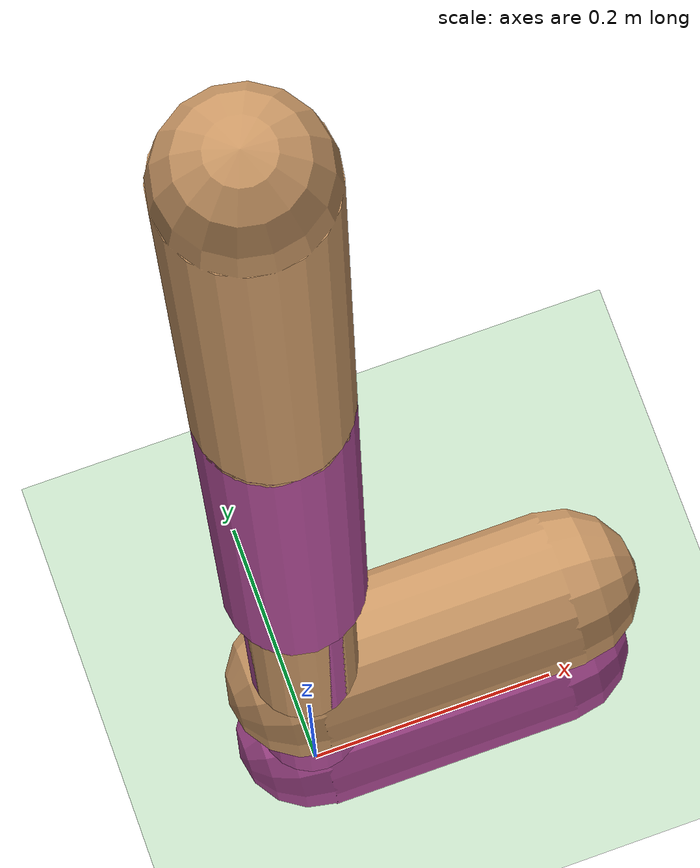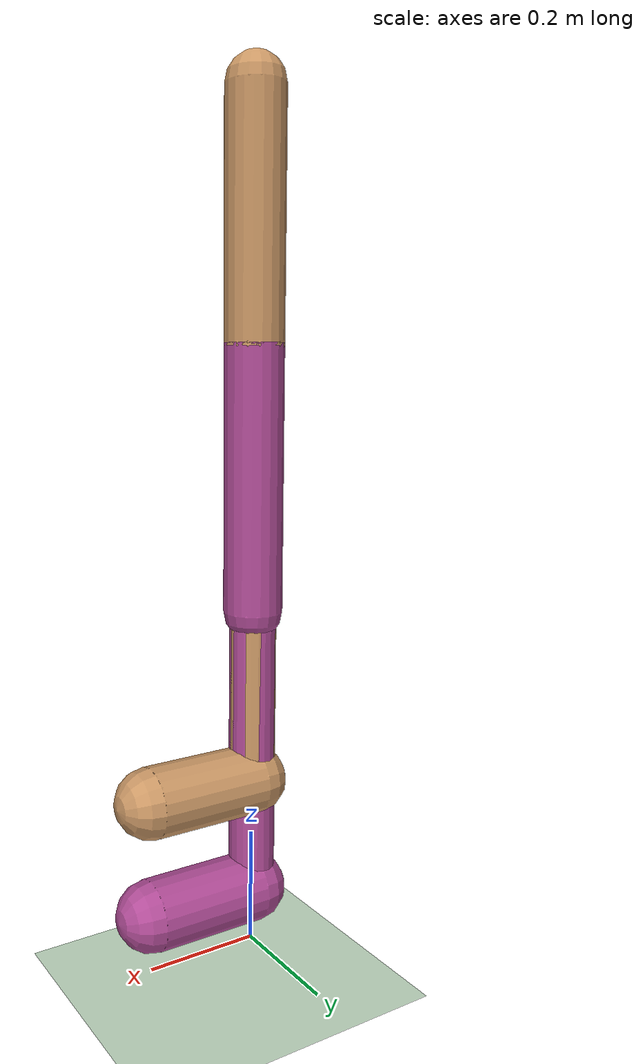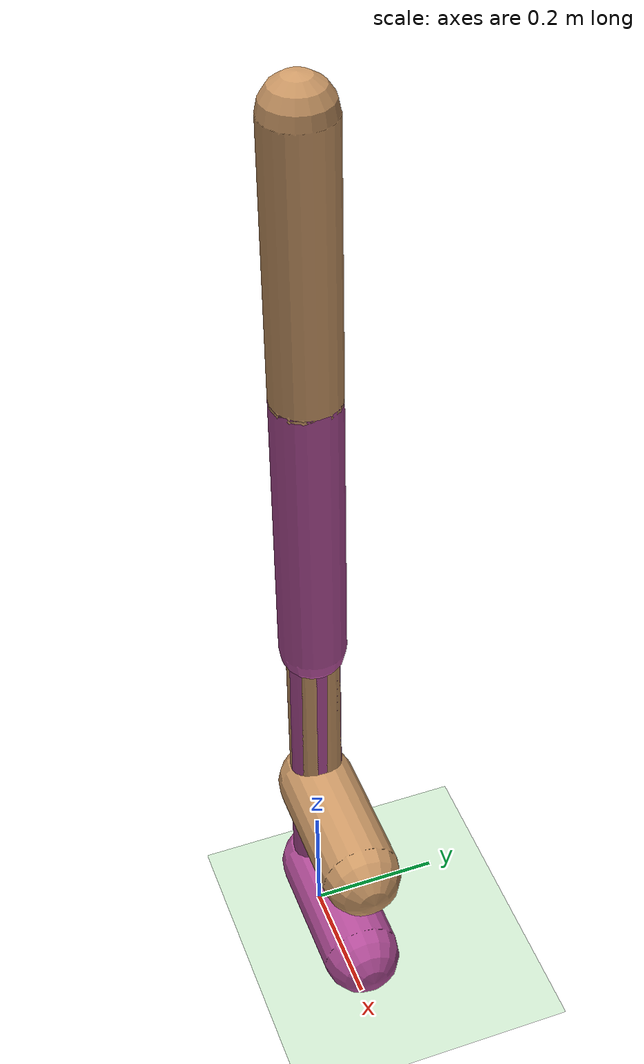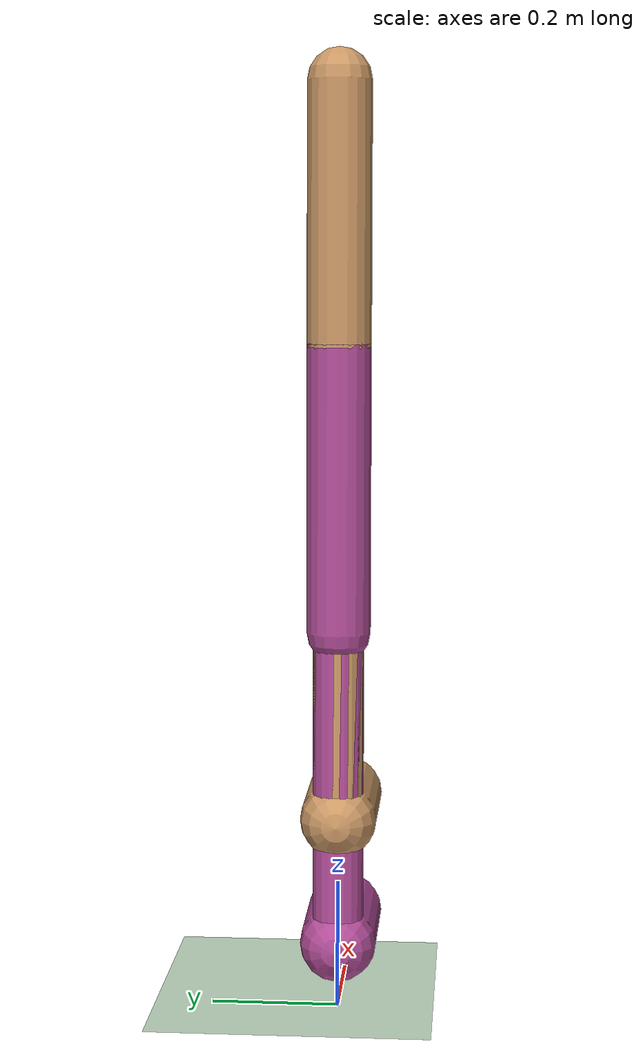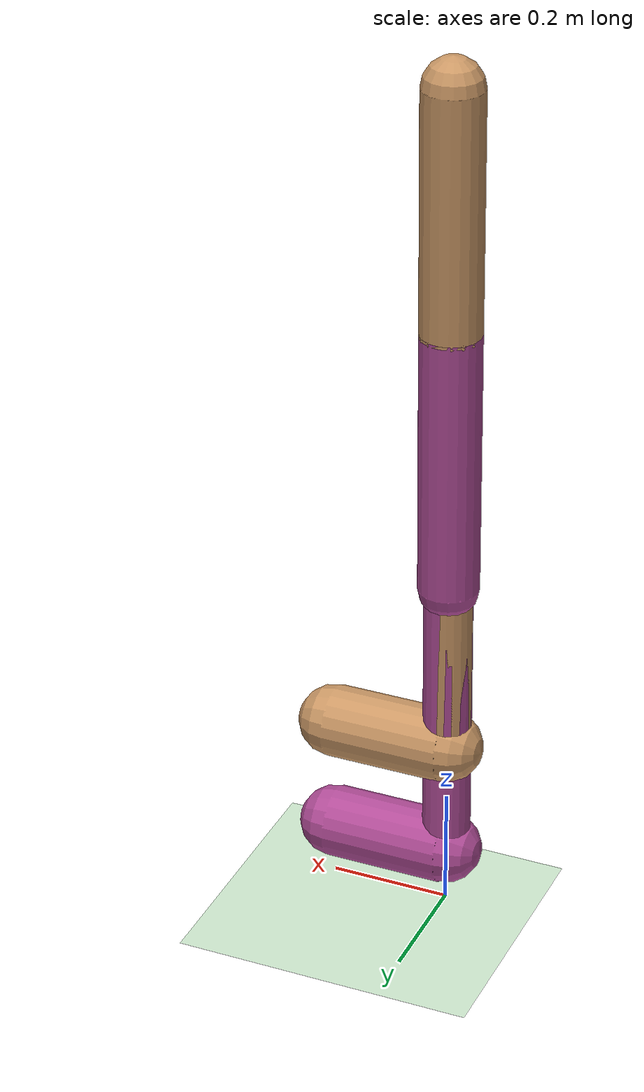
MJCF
<mujoco model="walker2d">
  <compiler angle="degree" coordinate="global" inertiafromgeom="true"/>
  <default>
    <joint armature="0.01" damping=".1" limited="true"/>
    <geom conaffinity="0" condim="3" contype="1" density="1000" friction=".7 .1 .1" rgba="0.8 0.6 .4 1"/>
  </default>
  <option integrator="RK4" timestep="0.002"/>
  <worldbody>
    <light cutoff="100" diffuse="1 1 1" dir="-0 0 -1.3" directional="true" exponent="1" pos="0 0 1.3" specular=".1 .1 .1"/>
    <geom conaffinity="1" condim="3" name="floor" pos="0 0 0" rgba="0.8 0.9 0.8 1" size="40 40 40" type="plane" material="MatPlane"/>
    <body name="torso" pos="0 0 1.25">
      <camera name="track" mode="trackcom" pos="0 -3 1" xyaxes="1 0 0 0 0 1"/>
      <joint armature="0" axis="1 0 0" damping="0" limited="false" name="rootx" pos="0 0 0" stiffness="0" type="slide"/>
      <joint armature="0" axis="0 0 1" damping="0" limited="false" name="rootz" pos="0 0 0" ref="1.25" stiffness="0" type="slide"/>
      <joint armature="0" axis="0 1 0" damping="0" limited="false" name="rooty" pos="0 0 1.25" stiffness="0" type="hinge"/>
      <geom friction="0.9" fromto="0 0 1.45 0 0 1.05" name="torso_geom" size="0.05" type="capsule"/>
      <body name="thigh" pos="0 0 1.05">
        <joint axis="0 -1 0" name="thigh_joint" pos="0 0 1.05" range="-150 0" type="hinge"/>
        <geom friction="0.9" fromto="0 0 1.05 0 0 1.045" name="thigh_geom" size="0.05" type="capsule"/>
        <body name="leg" pos="0 0 0.35">
          <joint axis="0 -1 0" name="leg_joint" pos="0 0 1.045" range="-150 0" type="hinge"/>
          <geom friction="0.9" fromto="0 0 1.045 0 0 0.3" name="leg_geom" size="0.04" type="capsule"/>
          <body name="foot" pos="0.2 0 0">
            <joint axis="0 -1 0" name="foot_joint" pos="0 0 0.3" range="-45 45" type="hinge"/>
            <geom friction="0.9" fromto="-0.0 0 0.3 0.2 0 0.3" name="foot_geom" size="0.06" type="capsule"/>
          </body>
        </body>
      </body>
      <!-- copied and then replace thigh->thigh_left, leg->leg_left, foot->foot_right -->
      <body name="thigh_left" pos="0 0 1.05">
        <joint axis="0 -1 0" name="thigh_left_joint" pos="0 0 1.05" range="-150 0" type="hinge"/>
        <geom friction="0.9" fromto="0 0 1.05 0 0 0.6" name="thigh_left_geom" rgba=".7 .3 .6 1" size="0.05" type="capsule"/>
        <body name="leg_left" pos="0 0 0.35">
          <joint axis="0 -1 0" name="leg_left_joint" pos="0 0 0.6" range="-150 0" type="hinge"/>
          <geom friction="0.9" fromto="0 0 0.6 0 0 0.1" name="leg_left_geom" rgba=".7 .3 .6 1" size="0.04" type="capsule"/>
          <body name="foot_left" pos="0.2 0 0">
            <joint axis="0 -1 0" name="foot_left_joint" pos="0 0 0.1" range="-45 45" type="hinge"/>
            <geom friction="1.9" fromto="-0.0 0 0.1 0.2 0 0.1" name="foot_left_geom" rgba=".7 .3 .6 1" size="0.06" type="capsule"/>
          </body>
        </body>
      </body>
    </body>
  </worldbody>
  <actuator>
    <motor ctrllimited="true" ctrlrange="-1.0 1.0" gear="100" joint="thigh_joint"/>
    <motor ctrllimited="true" ctrlrange="-1.0 1.0" gear="100" joint="leg_joint"/>
    <motor ctrllimited="true" ctrlrange="-1.0 1.0" gear="100" joint="foot_joint"/>
    <motor ctrllimited="true" ctrlrange="-1.0 1.0" gear="100" joint="thigh_left_joint"/>
    <motor ctrllimited="true" ctrlrange="-1.0 1.0" gear="100" joint="leg_left_joint"/>
    <motor ctrllimited="true" ctrlrange="-1.0 1.0" gear="100" joint="foot_left_joint"/>
  </actuator>
    <asset>
        <texture type="skybox" builtin="gradient" rgb1=".4 .5 .6" rgb2="0 0 0"
            width="100" height="100"/>
        <texture builtin="flat" height="1278" mark="cross" markrgb="1 1 1" name="texgeom" random="0.01" rgb1="0.8 0.6 0.4" rgb2="0.8 0.6 0.4" type="cube" width="127"/>
        <texture builtin="checker" height="100" name="texplane" rgb1="0 0 0" rgb2="0.8 0.8 0.8" type="2d" width="100"/>
        <material name="MatPlane" reflectance="0.5" shininess="1" specular="1" texrepeat="60 60" texture="texplane"/>
        <material name="geom" texture="texgeom" texuniform="true"/>
    </asset>
</mujoco>
